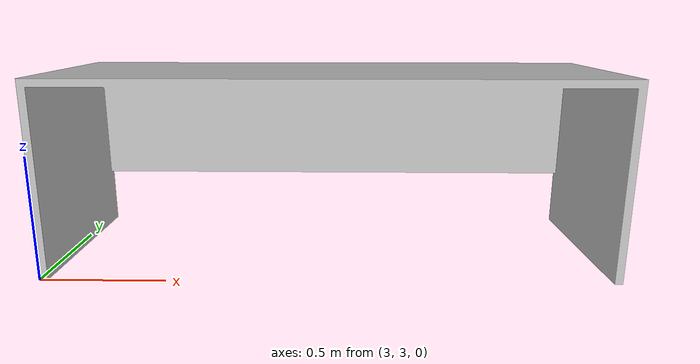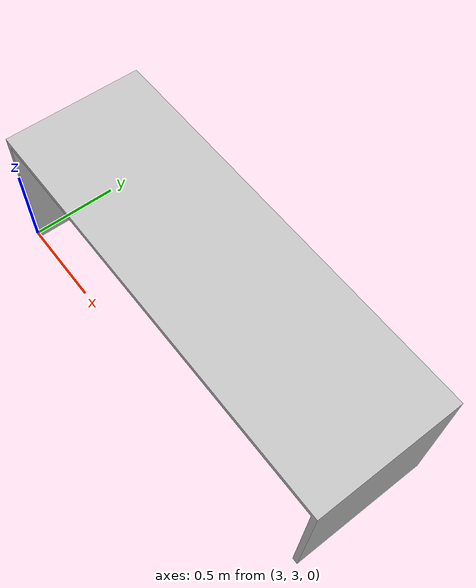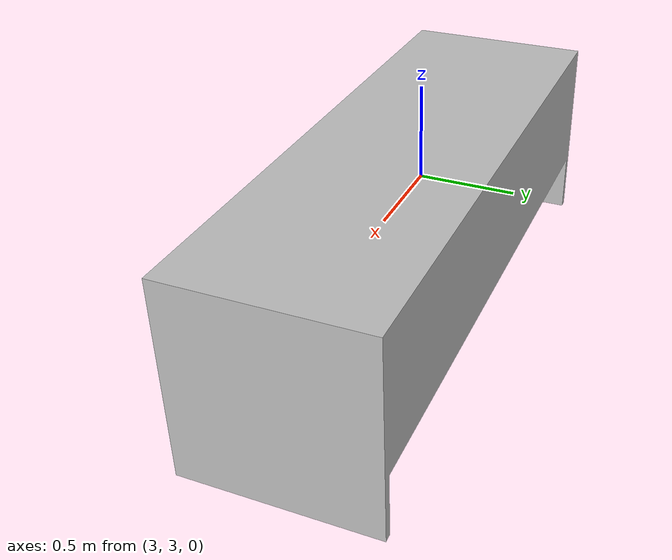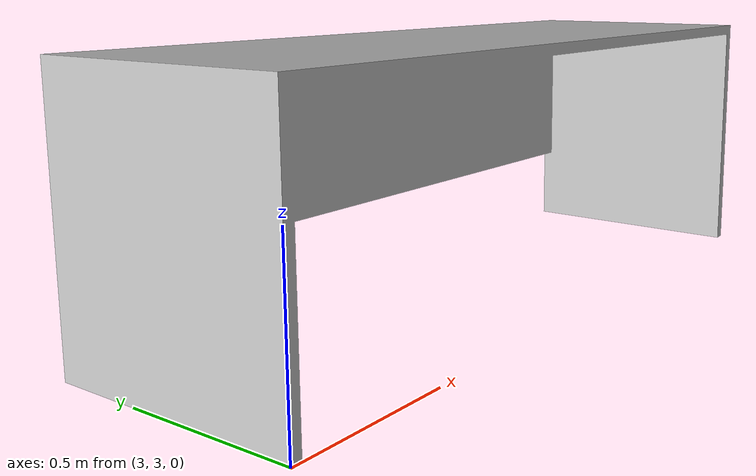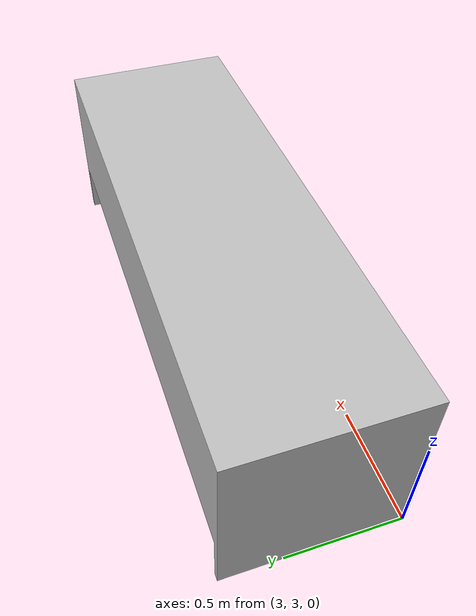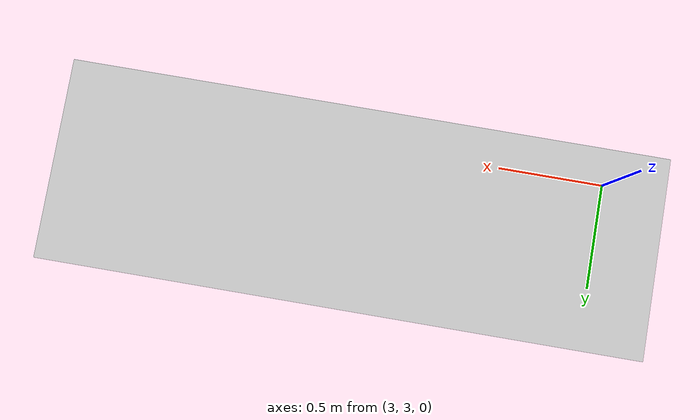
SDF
<?xml version='1.0'?>
<sdf version='1.5'>
  <model name='Computer_Table'>
    <static>true</static>
    <link name="link">
      <pose>3 3 0 0 0 0</pose>
      <visual name="visual">
            <geometry>
                <mesh>
                    <uri>model://computer_table/meshes/computer_table.dae</uri>
                </mesh>
            </geometry>

        </visual>
        <collision name="collision">
            <geometry>
                <mesh>
                   <uri>model://computer_table/meshes/computer_table.dae</uri>
                </mesh>
            </geometry>
        </collision>
    </link>
  </model>
</sdf>
